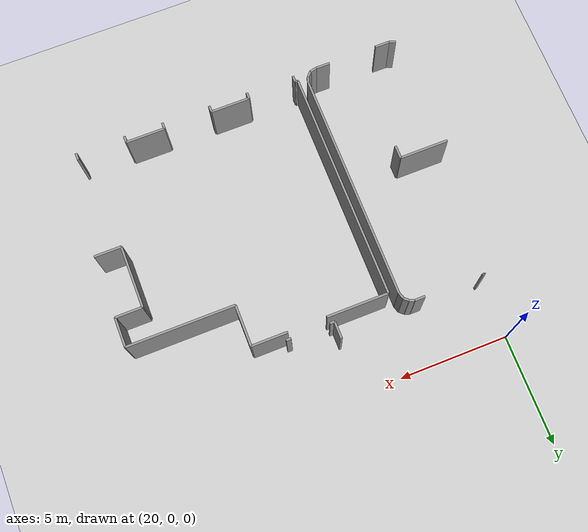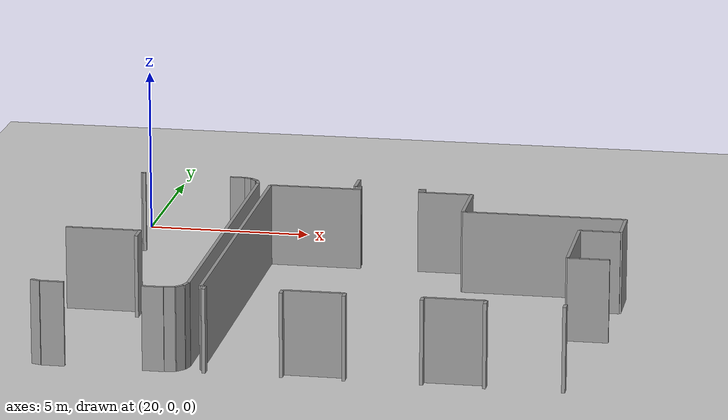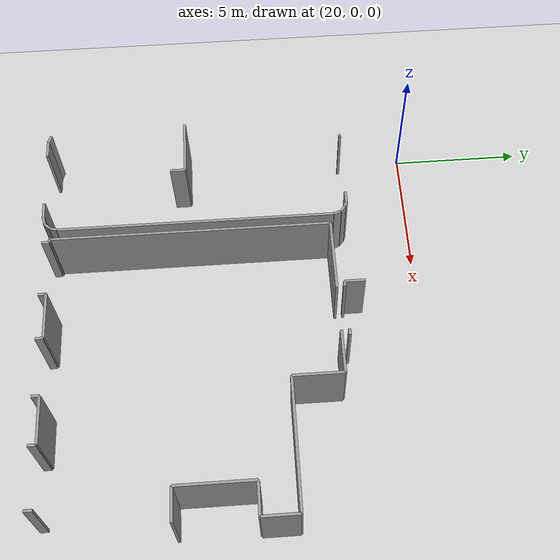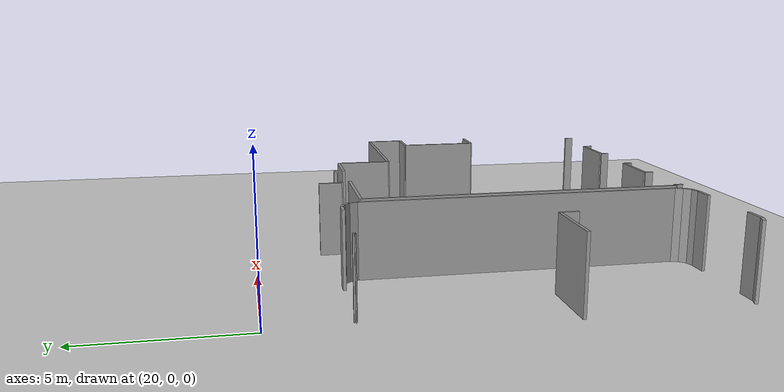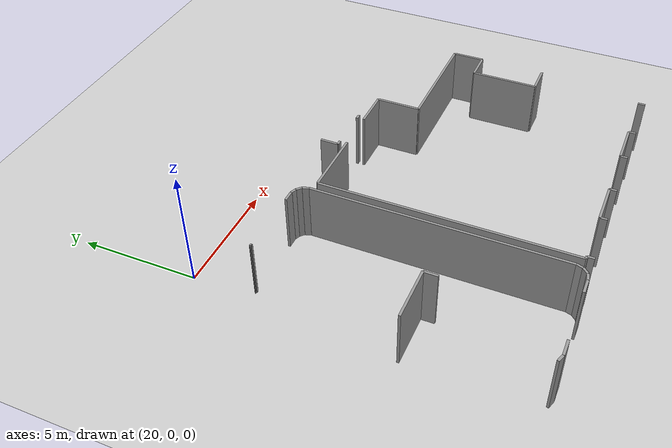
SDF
<sdf version="1.6">
 <world name="default">
  <model name="ground_plane">
   <static>1</static>
   <link name="link">
    <collision name="collision">
     <geometry><plane><normal>0 0 1</normal><size>100 100</size></plane></geometry>
     <surface><friction><ode><mu>100</mu><mu2>50</mu2></ode></friction></surface>
    </collision>
    <visual name="visual">
     <cast_shadows>0</cast_shadows>
     <geometry><plane><normal>0 0 1</normal><size>100 100</size></plane></geometry>
     <material>
      <script><uri>file://media/materials/scripts/gazebo.material</uri><name>Gazebo/Grey</name></script>
     </material>
    </visual>
   </link>
  </model>
  <model name="0510032270_A_40_1_104">
   <static>1</static>
   <link name="Wall_309">
    <collision name="Wall_309_Collision">
     <geometry><box><size>0.59379645984 0.1 2.5</size></box></geometry>
     <pose>0.29689822992 0 1.25 0 0 0</pose>
    </collision>
    <visual name="Wall_309_Visual">
     <pose>0.29689822992 0 1.25 0 0 0</pose>
     <geometry><box><size>0.59379645984 0.1 2.5</size></box></geometry>
     <material>
      <script><uri>file://media/materials/scripts/gazebo.material</uri><name>Gazebo/Grey</name></script>
      <ambient>1 1 1 1</ambient>
     </material>
    </visual>
    <pose>69.3561380993 -24.5252042645 0 0 0 1.57079632679</pose>
   </link>
   <link name="Wall_310">
    <collision name="Wall_310_Collision">
     <geometry><box><size>2.23642578497 0.1 2.5</size></box></geometry>
     <pose>1.11821289249 0 1.25 0 0 0</pose>
    </collision>
    <visual name="Wall_310_Visual">
     <pose>1.11821289249 0 1.25 0 0 0</pose>
     <geometry><box><size>2.23642578497 0.1 2.5</size></box></geometry>
     <material>
      <script><uri>file://media/materials/scripts/gazebo.material</uri><name>Gazebo/Grey</name></script>
      <ambient>1 1 1 1</ambient>
     </material>
    </visual>
    <pose>69.3561380993 -23.9314078046 0 0 0 3.14159265359</pose>
   </link>
   <link name="Wall_313">
    <collision name="Wall_313_Collision">
     <geometry><box><size>0.0285906705465 0.1 2.5</size></box></geometry>
     <pose>0.0142953352733 0 1.25 0 0 0</pose>
    </collision>
    <visual name="Wall_313_Visual">
     <pose>0.0142953352733 0 1.25 0 0 0</pose>
     <geometry><box><size>0.0285906705465 0.1 2.5</size></box></geometry>
     <material>
      <script><uri>file://media/materials/scripts/gazebo.material</uri><name>Gazebo/Grey</name></script>
      <ambient>1 1 1 1</ambient>
     </material>
    </visual>
    <pose>68.0940823665 -17.7790767119 0 0 0 1.57079632679</pose>
   </link>
   <link name="Wall_314">
    <collision name="Wall_314_Collision">
     <geometry><box><size>0.0955563744488 0.1 2.5</size></box></geometry>
     <pose>0.0477781872244 0 1.25 0 0 0</pose>
    </collision>
    <visual name="Wall_314_Visual">
     <pose>0.0477781872244 0 1.25 0 0 0</pose>
     <geometry><box><size>0.0955563744488 0.1 2.5</size></box></geometry>
     <material>
      <script><uri>file://media/materials/scripts/gazebo.material</uri><name>Gazebo/Grey</name></script>
      <ambient>1 1 1 1</ambient>
     </material>
    </visual>
    <pose>68.0940823665 -17.7504860414 0 0 0 0.0</pose>
   </link>
   <link name="Wall_317">
    <collision name="Wall_317_Collision">
     <geometry><box><size>0.469522345197 0.1 2.5</size></box></geometry>
     <pose>0.234761172599 0 1.25 0 0 0</pose>
    </collision>
    <visual name="Wall_317_Visual">
     <pose>0.234761172599 0 1.25 0 0 0</pose>
     <geometry><box><size>0.469522345197 0.1 2.5</size></box></geometry>
     <material>
      <script><uri>file://media/materials/scripts/gazebo.material</uri><name>Gazebo/Grey</name></script>
      <ambient>1 1 1 1</ambient>
     </material>
    </visual>
    <pose>70.8413281319 -17.7766623887 0 0 0 0.0</pose>
   </link>
   <link name="Wall_318">
    <collision name="Wall_318_Collision">
     <geometry><box><size>0.236768638084 0.1 2.5</size></box></geometry>
     <pose>0.118384319042 0 1.25 0 0 0</pose>
    </collision>
    <visual name="Wall_318_Visual">
     <pose>0.118384319042 0 1.25 0 0 0</pose>
     <geometry><box><size>0.236768638084 0.1 2.5</size></box></geometry>
     <material>
      <script><uri>file://media/materials/scripts/gazebo.material</uri><name>Gazebo/Grey</name></script>
      <ambient>1 1 1 1</ambient>
     </material>
    </visual>
    <pose>71.3108504771 -17.7766623887 0 0 0 -0.374726094669</pose>
   </link>
   <link name="Wall_319">
    <collision name="Wall_319_Collision">
     <geometry><box><size>0.258284334873 0.1 2.5</size></box></geometry>
     <pose>0.129142167436 0 1.25 0 0 0</pose>
    </collision>
    <visual name="Wall_319_Visual">
     <pose>0.129142167436 0 1.25 0 0 0</pose>
     <geometry><box><size>0.258284334873 0.1 2.5</size></box></geometry>
     <material>
      <script><uri>file://media/materials/scripts/gazebo.material</uri><name>Gazebo/Grey</name></script>
      <ambient>1 1 1 1</ambient>
     </material>
    </visual>
    <pose>71.5311892448 -17.8633238878 0 0 0 -0.735630862647</pose>
   </link>
   <link name="Wall_320">
    <collision name="Wall_320_Collision">
     <geometry><box><size>0.289038647624 0.1 2.5</size></box></geometry>
     <pose>0.144519323812 0 1.25 0 0 0</pose>
    </collision>
    <visual name="Wall_320_Visual">
     <pose>0.144519323812 0 1.25 0 0 0</pose>
     <geometry><box><size>0.289038647624 0.1 2.5</size></box></geometry>
     <material>
      <script><uri>file://media/materials/scripts/gazebo.material</uri><name>Gazebo/Grey</name></script>
      <ambient>1 1 1 1</ambient>
     </material>
    </visual>
    <pose>71.7226832027 -18.0366468862 0 0 0 -1.2533554913</pose>
   </link>
   <link name="Wall_321">
    <collision name="Wall_321_Collision">
     <geometry><box><size>10.4958257621 0.1 2.5</size></box></geometry>
     <pose>5.24791288105 0 1.25 0 0 0</pose>
    </collision>
    <visual name="Wall_321_Visual">
     <pose>5.24791288105 0 1.25 0 0 0</pose>
     <geometry><box><size>10.4958257621 0.1 2.5</size></box></geometry>
     <material>
      <script><uri>file://media/materials/scripts/gazebo.material</uri><name>Gazebo/Grey</name></script>
      <ambient>1 1 1 1</ambient>
     </material>
    </visual>
    <pose>71.8129026519 -18.3112443931 0 0 0 -1.57079632679</pose>
   </link>
   <link name="Wall_322">
    <collision name="Wall_322_Collision">
     <geometry><box><size>0.274491879412 0.1 2.5</size></box></geometry>
     <pose>0.137245939706 0 1.25 0 0 0</pose>
    </collision>
    <visual name="Wall_322_Visual">
     <pose>0.137245939706 0 1.25 0 0 0</pose>
     <geometry><box><size>0.274491879412 0.1 2.5</size></box></geometry>
     <material>
      <script><uri>file://media/materials/scripts/gazebo.material</uri><name>Gazebo/Grey</name></script>
      <ambient>1 1 1 1</ambient>
     </material>
    </visual>
    <pose>71.8129026519 -28.8070701552 0 0 0 -1.8885943326</pose>
   </link>
   <link name="Wall_323">
    <collision name="Wall_323_Collision">
     <geometry><box><size>0.297531916177 0.1 2.5</size></box></geometry>
     <pose>0.148765958089 0 1.25 0 0 0</pose>
    </collision>
    <visual name="Wall_323_Visual">
     <pose>0.148765958089 0 1.25 0 0 0</pose>
     <geometry><box><size>0.297531916177 0.1 2.5</size></box></geometry>
     <material>
      <script><uri>file://media/materials/scripts/gazebo.material</uri><name>Gazebo/Grey</name></script>
      <ambient>1 1 1 1</ambient>
     </material>
    </visual>
    <pose>71.7271306403 -29.0678170705 0 0 0 -2.34139641613</pose>
   </link>
   <link name="Wall_324">
    <collision name="Wall_324_Collision">
     <geometry><box><size>0.314776010015 0.1 2.5</size></box></geometry>
     <pose>0.157388005008 0 1.25 0 0 0</pose>
    </collision>
    <visual name="Wall_324_Visual">
     <pose>0.157388005008 0 1.25 0 0 0</pose>
     <geometry><box><size>0.314776010015 0.1 2.5</size></box></geometry>
     <material>
      <script><uri>file://media/materials/scripts/gazebo.material</uri><name>Gazebo/Grey</name></script>
      <ambient>1 1 1 1</ambient>
     </material>
    </visual>
    <pose>71.5198800463 -29.2812940773 0 0 0 -2.93010459838</pose>
   </link>
   <link name="Wall_325">
    <collision name="Wall_325_Collision">
     <geometry><box><size>0.634458746839 0.1 2.5</size></box></geometry>
     <pose>0.31722937342 0 1.25 0 0 0</pose>
    </collision>
    <visual name="Wall_325_Visual">
     <pose>0.31722937342 0 1.25 0 0 0</pose>
     <geometry><box><size>0.634458746839 0.1 2.5</size></box></geometry>
     <material>
      <script><uri>file://media/materials/scripts/gazebo.material</uri><name>Gazebo/Grey</name></script>
      <ambient>1 1 1 1</ambient>
     </material>
    </visual>
    <pose>71.2121173615 -29.3473702937 0 0 0 3.14159265359</pose>
   </link>
   <link name="Wall_326">
    <collision name="Wall_326_Collision">
     <geometry><box><size>0.681601585829 0.1 2.5</size></box></geometry>
     <pose>0.340800792915 0 1.25 0 0 0</pose>
    </collision>
    <visual name="Wall_326_Visual">
     <pose>0.340800792915 0 1.25 0 0 0</pose>
     <geometry><box><size>0.681601585829 0.1 2.5</size></box></geometry>
     <material>
      <script><uri>file://media/materials/scripts/gazebo.material</uri><name>Gazebo/Grey</name></script>
      <ambient>1 1 1 1</ambient>
     </material>
    </visual>
    <pose>68.322426522 -29.3473702937 0 0 0 3.14159265359</pose>
   </link>
   <link name="Wall_327">
    <collision name="Wall_327_Collision">
     <geometry><box><size>0.309988923314 0.1 2.5</size></box></geometry>
     <pose>0.154994461657 0 1.25 0 0 0</pose>
    </collision>
    <visual name="Wall_327_Visual">
     <pose>0.154994461657 0 1.25 0 0 0</pose>
     <geometry><box><size>0.309988923314 0.1 2.5</size></box></geometry>
     <material>
      <script><uri>file://media/materials/scripts/gazebo.material</uri><name>Gazebo/Grey</name></script>
      <ambient>1 1 1 1</ambient>
     </material>
    </visual>
    <pose>67.6408249361 -29.3473702937 0 0 0 2.80052646724</pose>
   </link>
   <link name="Wall_330">
    <collision name="Wall_330_Collision">
     <geometry><box><size>10.5847745149 0.1 2.5</size></box></geometry>
     <pose>5.29238725746 0 1.25 0 0 0</pose>
    </collision>
    <visual name="Wall_330_Visual">
     <pose>5.29238725746 0 1.25 0 0 0</pose>
     <geometry><box><size>10.5847745149 0.1 2.5</size></box></geometry>
     <material>
      <script><uri>file://media/materials/scripts/gazebo.material</uri><name>Gazebo/Grey</name></script>
      <ambient>1 1 1 1</ambient>
     </material>
    </visual>
    <pose>72.2214315666 -29.0576514988 0 0 0 1.57079632679</pose>
   </link>
   <link name="Wall_331">
    <collision name="Wall_331_Collision">
     <geometry><box><size>2.80798505661 0.1 2.5</size></box></geometry>
     <pose>1.4039925283 0 1.25 0 0 0</pose>
    </collision>
    <visual name="Wall_331_Visual">
     <pose>1.4039925283 0 1.25 0 0 0</pose>
     <geometry><box><size>2.80798505661 0.1 2.5</size></box></geometry>
     <material>
      <script><uri>file://media/materials/scripts/gazebo.material</uri><name>Gazebo/Grey</name></script>
      <ambient>1 1 1 1</ambient>
     </material>
    </visual>
    <pose>72.2214315666 -18.4728769839 0 0 0 0.0</pose>
   </link>
   <link name="Wall_332">
    <collision name="Wall_332_Collision">
     <geometry><box><size>1.63856309643 0.1 2.5</size></box></geometry>
     <pose>0.819281548217 0 1.25 0 0 0</pose>
    </collision>
    <visual name="Wall_332_Visual">
     <pose>0.819281548217 0 1.25 0 0 0</pose>
     <geometry><box><size>1.63856309643 0.1 2.5</size></box></geometry>
     <material>
      <script><uri>file://media/materials/scripts/gazebo.material</uri><name>Gazebo/Grey</name></script>
      <ambient>1 1 1 1</ambient>
     </material>
    </visual>
    <pose>76.7834860287 -18.4728769839 0 0 0 0.0</pose>
   </link>
   <link name="Wall_333">
    <collision name="Wall_333_Collision">
     <geometry><box><size>1.88584062925 0.1 2.5</size></box></geometry>
     <pose>0.942920314624 0 1.25 0 0 0</pose>
    </collision>
    <visual name="Wall_333_Visual">
     <pose>0.942920314624 0 1.25 0 0 0</pose>
     <geometry><box><size>1.88584062925 0.1 2.5</size></box></geometry>
     <material>
      <script><uri>file://media/materials/scripts/gazebo.material</uri><name>Gazebo/Grey</name></script>
      <ambient>1 1 1 1</ambient>
     </material>
    </visual>
    <pose>78.4220491251 -18.4728769839 0 0 0 -1.57079632679</pose>
   </link>
   <link name="Wall_334">
    <collision name="Wall_334_Collision">
     <geometry><box><size>4.88468429546 0.1 2.5</size></box></geometry>
     <pose>2.44234214773 0 1.25 0 0 0</pose>
    </collision>
    <visual name="Wall_334_Visual">
     <pose>2.44234214773 0 1.25 0 0 0</pose>
     <geometry><box><size>4.88468429546 0.1 2.5</size></box></geometry>
     <material>
      <script><uri>file://media/materials/scripts/gazebo.material</uri><name>Gazebo/Grey</name></script>
      <ambient>1 1 1 1</ambient>
     </material>
    </visual>
    <pose>78.4220491251 -20.3587176131 0 0 0 0.0</pose>
   </link>
   <link name="Wall_335">
    <collision name="Wall_335_Collision">
     <geometry><box><size>1.34973378909 0.1 2.5</size></box></geometry>
     <pose>0.674866894545 0 1.25 0 0 0</pose>
    </collision>
    <visual name="Wall_335_Visual">
     <pose>0.674866894545 0 1.25 0 0 0</pose>
     <geometry><box><size>1.34973378909 0.1 2.5</size></box></geometry>
     <material>
      <script><uri>file://media/materials/scripts/gazebo.material</uri><name>Gazebo/Grey</name></script>
      <ambient>1 1 1 1</ambient>
     </material>
    </visual>
    <pose>83.3067334206 -20.3587176131 0 0 0 -1.57079632679</pose>
   </link>
   <link name="Wall_336">
    <collision name="Wall_336_Collision">
     <geometry><box><size>1.22088516716 0.1 2.5</size></box></geometry>
     <pose>0.61044258358 0 1.25 0 0 0</pose>
    </collision>
    <visual name="Wall_336_Visual">
     <pose>0.61044258358 0 1.25 0 0 0</pose>
     <geometry><box><size>1.22088516716 0.1 2.5</size></box></geometry>
     <material>
      <script><uri>file://media/materials/scripts/gazebo.material</uri><name>Gazebo/Grey</name></script>
      <ambient>1 1 1 1</ambient>
     </material>
    </visual>
    <pose>83.3067334206 -21.7084514022 0 0 0 3.14159265359</pose>
   </link>
   <link name="Wall_337">
    <collision name="Wall_337_Collision">
     <geometry><box><size>2.85538203489 0.1 2.5</size></box></geometry>
     <pose>1.42769101745 0 1.25 0 0 0</pose>
    </collision>
    <visual name="Wall_337_Visual">
     <pose>1.42769101745 0 1.25 0 0 0</pose>
     <geometry><box><size>2.85538203489 0.1 2.5</size></box></geometry>
     <material>
      <script><uri>file://media/materials/scripts/gazebo.material</uri><name>Gazebo/Grey</name></script>
      <ambient>1 1 1 1</ambient>
     </material>
    </visual>
    <pose>82.0858482534 -21.7084514022 0 0 0 -1.57079632679</pose>
   </link>
   <link name="Wall_338">
    <collision name="Wall_338_Collision">
     <geometry><box><size>1.22444311727 0.1 2.5</size></box></geometry>
     <pose>0.612221558636 0 1.25 0 0 0</pose>
    </collision>
    <visual name="Wall_338_Visual">
     <pose>0.612221558636 0 1.25 0 0 0</pose>
     <geometry><box><size>1.22444311727 0.1 2.5</size></box></geometry>
     <material>
      <script><uri>file://media/materials/scripts/gazebo.material</uri><name>Gazebo/Grey</name></script>
      <ambient>1 1 1 1</ambient>
     </material>
    </visual>
    <pose>82.0858482534 -24.5638334371 0 0 0 0.0</pose>
   </link>
   <link name="Wall_341">
    <collision name="Wall_341_Collision">
     <geometry><box><size>0.311574774134 0.1 2.5</size></box></geometry>
     <pose>0.155787387067 0 1.25 0 0 0</pose>
    </collision>
    <visual name="Wall_341_Visual">
     <pose>0.155787387067 0 1.25 0 0 0</pose>
     <geometry><box><size>0.311574774134 0.1 2.5</size></box></geometry>
     <material>
      <script><uri>file://media/materials/scripts/gazebo.material</uri><name>Gazebo/Grey</name></script>
      <ambient>1 1 1 1</ambient>
     </material>
    </visual>
    <pose>82.5896794033 -29.0505355986 0 0 0 -1.57079632679</pose>
   </link>
   <link name="Wall_342">
    <collision name="Wall_342_Collision">
     <geometry><box><size>0.299249018387 0.1 2.5</size></box></geometry>
     <pose>0.149624509193 0 1.25 0 0 0</pose>
    </collision>
    <visual name="Wall_342_Visual">
     <pose>0.149624509193 0 1.25 0 0 0</pose>
     <geometry><box><size>0.299249018387 0.1 2.5</size></box></geometry>
     <material>
      <script><uri>file://media/materials/scripts/gazebo.material</uri><name>Gazebo/Grey</name></script>
      <ambient>1 1 1 1</ambient>
     </material>
    </visual>
    <pose>80.3569386381 -29.3621103727 0 0 0 1.57079632679</pose>
   </link>
   <link name="Wall_343">
    <collision name="Wall_343_Collision">
     <geometry><box><size>1.78354956352 0.1 2.5</size></box></geometry>
     <pose>0.891774781758 0 1.25 0 0 0</pose>
    </collision>
    <visual name="Wall_343_Visual">
     <pose>0.891774781758 0 1.25 0 0 0</pose>
     <geometry><box><size>1.78354956352 0.1 2.5</size></box></geometry>
     <material>
      <script><uri>file://media/materials/scripts/gazebo.material</uri><name>Gazebo/Grey</name></script>
      <ambient>1 1 1 1</ambient>
     </material>
    </visual>
    <pose>80.3569386381 -29.0628613543 0 0 0 3.14159265359</pose>
   </link>
   <link name="Wall_344">
    <collision name="Wall_344_Collision">
     <geometry><box><size>0.289464655578 0.1 2.5</size></box></geometry>
     <pose>0.144732327789 0 1.25 0 0 0</pose>
    </collision>
    <visual name="Wall_344_Visual">
     <pose>0.144732327789 0 1.25 0 0 0</pose>
     <geometry><box><size>0.289464655578 0.1 2.5</size></box></geometry>
     <material>
      <script><uri>file://media/materials/scripts/gazebo.material</uri><name>Gazebo/Grey</name></script>
      <ambient>1 1 1 1</ambient>
     </material>
    </visual>
    <pose>78.5733890746 -29.0628613543 0 0 0 -1.57079632679</pose>
   </link>
   <link name="Wall_345">
    <collision name="Wall_345_Collision">
     <geometry><box><size>0.29302260569 0.1 2.5</size></box></geometry>
     <pose>0.146511302845 0 1.25 0 0 0</pose>
    </collision>
    <visual name="Wall_345_Visual">
     <pose>0.146511302845 0 1.25 0 0 0</pose>
     <geometry><box><size>0.29302260569 0.1 2.5</size></box></geometry>
     <material>
      <script><uri>file://media/materials/scripts/gazebo.material</uri><name>Gazebo/Grey</name></script>
      <ambient>1 1 1 1</ambient>
     </material>
    </visual>
    <pose>76.3569132241 -29.3523260099 0 0 0 1.57079632679</pose>
   </link>
   <link name="Wall_346">
    <collision name="Wall_346_Collision">
     <geometry><box><size>1.78786993151 0.1 2.5</size></box></geometry>
     <pose>0.893934965755 0 1.25 0 0 0</pose>
    </collision>
    <visual name="Wall_346_Visual">
     <pose>0.893934965755 0 1.25 0 0 0</pose>
     <geometry><box><size>1.78786993151 0.1 2.5</size></box></geometry>
     <material>
      <script><uri>file://media/materials/scripts/gazebo.material</uri><name>Gazebo/Grey</name></script>
      <ambient>1 1 1 1</ambient>
     </material>
    </visual>
    <pose>76.3569132241 -29.0593034042 0 0 0 3.14159265359</pose>
   </link>
   <link name="Wall_347">
    <collision name="Wall_347_Collision">
     <geometry><box><size>0.290481212753 0.1 2.5</size></box></geometry>
     <pose>0.145240606376 0 1.25 0 0 0</pose>
    </collision>
    <visual name="Wall_347_Visual">
     <pose>0.145240606376 0 1.25 0 0 0</pose>
     <geometry><box><size>0.290481212753 0.1 2.5</size></box></geometry>
     <material>
      <script><uri>file://media/materials/scripts/gazebo.material</uri><name>Gazebo/Grey</name></script>
      <ambient>1 1 1 1</ambient>
     </material>
    </visual>
    <pose>74.5690432926 -29.0593034042 0 0 0 -1.57079632679</pose>
   </link>
   <link name="Wall_348">
    <collision name="Wall_348_Collision">
     <geometry><box><size>0.284254800056 0.1 2.5</size></box></geometry>
     <pose>0.142127400028 0 1.25 0 0 0</pose>
    </collision>
    <visual name="Wall_348_Visual">
     <pose>0.142127400028 0 1.25 0 0 0</pose>
     <geometry><box><size>0.284254800056 0.1 2.5</size></box></geometry>
     <material>
      <script><uri>file://media/materials/scripts/gazebo.material</uri><name>Gazebo/Grey</name></script>
      <ambient>1 1 1 1</ambient>
     </material>
    </visual>
    <pose>72.3460868902 -29.3497846169 0 0 0 1.57079632679</pose>
   </link>
   <link name="Wall_349">
    <collision name="Wall_349_Collision">
     <geometry><box><size>0.124904033537 0.1 2.5</size></box></geometry>
     <pose>0.0624520167683 0 1.25 0 0 0</pose>
    </collision>
    <visual name="Wall_349_Visual">
     <pose>0.0624520167683 0 1.25 0 0 0</pose>
     <geometry><box><size>0.124904033537 0.1 2.5</size></box></geometry>
     <material>
      <script><uri>file://media/materials/scripts/gazebo.material</uri><name>Gazebo/Grey</name></script>
      <ambient>1 1 1 1</ambient>
     </material>
    </visual>
    <pose>72.3460868902 -29.0655298169 0 0 0 3.07847578558</pose>
   </link>
   <link name="Wall_545">
    <collision name="Wall_545_Collision">
     <geometry><box><size>0.225421553554 0.1 2.5</size></box></geometry>
     <pose>0.112710776777 0 1.25 0 0 0</pose>
    </collision>
    <visual name="Wall_545_Visual">
     <pose>0.112710776777 0 1.25 0 0 0</pose>
     <geometry><box><size>0.225421553554 0.1 2.5</size></box></geometry>
     <material>
      <script><uri>file://media/materials/scripts/gazebo.material</uri><name>Gazebo/Grey</name></script>
      <ambient>1 1 1 1</ambient>
     </material>
    </visual>
    <pose>76.9787920759 -18.1714677815 0 0 0 3.14159265359</pose>
   </link>
   <link name="Wall_546">
    <collision name="Wall_546_Collision">
     <geometry><box><size>0.208521290519 0.1 2.5</size></box></geometry>
     <pose>0.10426064526 0 1.25 0 0 0</pose>
    </collision>
    <visual name="Wall_546_Visual">
     <pose>0.10426064526 0 1.25 0 0 0</pose>
     <geometry><box><size>0.208521290519 0.1 2.5</size></box></geometry>
     <material>
      <script><uri>file://media/materials/scripts/gazebo.material</uri><name>Gazebo/Grey</name></script>
      <ambient>1 1 1 1</ambient>
     </material>
    </visual>
    <pose>75.0041297635 -18.1714677815 0 0 0 3.14159265359</pose>
   </link>
   <link name="Wall_547">
    <collision name="Wall_547_Collision">
     <geometry><box><size>0.772583452991 0.1 2.5</size></box></geometry>
     <pose>0.386291726495 0 1.25 0 0 0</pose>
    </collision>
    <visual name="Wall_547_Visual">
     <pose>0.386291726495 0 1.25 0 0 0</pose>
     <geometry><box><size>0.772583452991 0.1 2.5</size></box></geometry>
     <material>
      <script><uri>file://media/materials/scripts/gazebo.material</uri><name>Gazebo/Grey</name></script>
      <ambient>1 1 1 1</ambient>
     </material>
    </visual>
    <pose>74.795608473 -18.1714677815 0 0 0 1.57079632679</pose>
   </link>
   <pose>-47.8 15.2142705567 0 0 0 0</pose>
  </model>
 </world>
</sdf>
